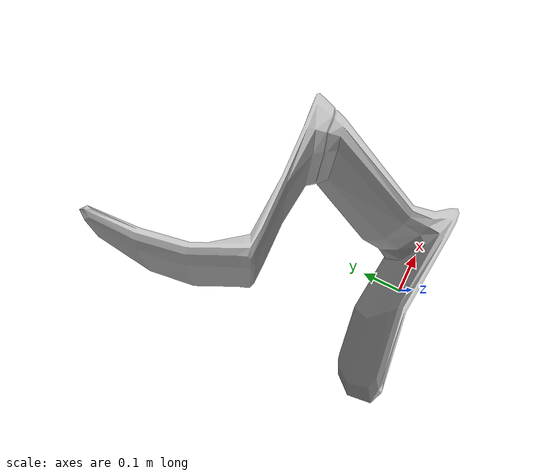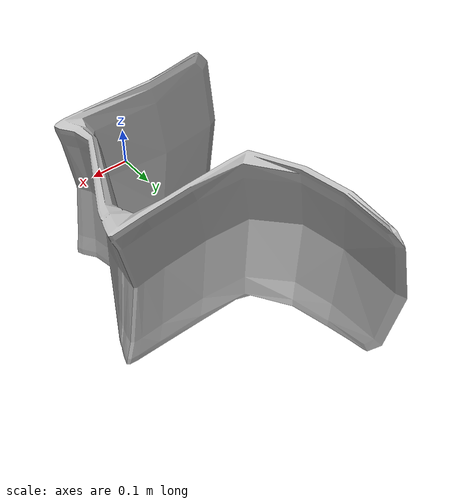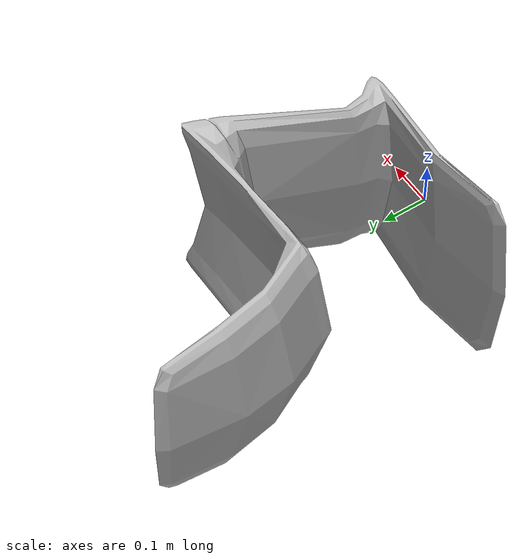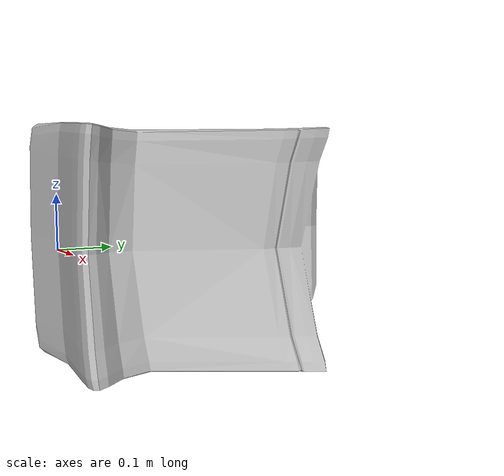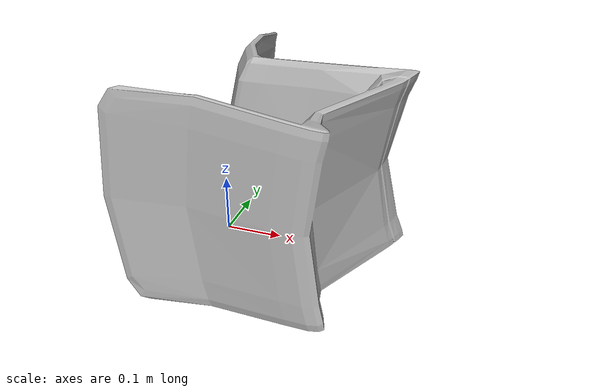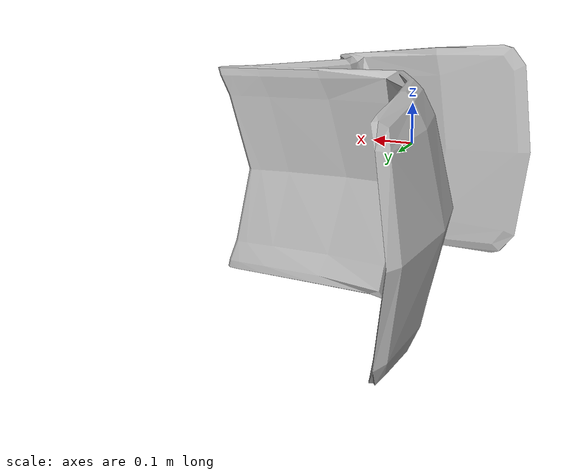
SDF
<?xml version="1.0" ?>
<sdf version="1.6">
  <model name="aws_robomaker_residential_ChairD_01">
    <link name="link">

      <inertial>
        <mass>4.5</mass>
          <inertia>
            <ixy>0</ixy>
            <ixz>0</ixz>
            <iyz>0</iyz>
            <ixx>0.217</ixx>
            <iyy>0.217</iyy>
            <izz>0.067</izz>
          </inertia>
      </inertial>

      <collision name="collision">

        <geometry>
          <mesh>
<uri>model://aws_robomaker_residential_ChairD_01/meshes/object.obj</uri>
            <scale>1 1 1</scale>
          </mesh>
        </geometry>

      </collision>
      <visual name="visual">
	    <geometry>
          <mesh>
<uri>model://aws_robomaker_residential_ChairD_01/meshes/object.obj</uri>
          </mesh>
        </geometry>
      <meta> <layer> 1 </layer></meta>
</visual>
    </link>
  </model>
</sdf>
